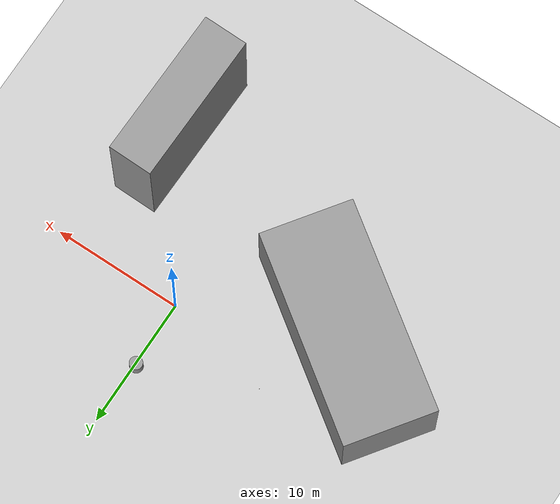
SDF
<sdf version="1.6">
 <world name="default">
  <light name="sun" type="directional">
   <pose>0 0 10 0 -0 0</pose>
   <diffuse>0.8 0.8 0.8 1</diffuse>
   <specular>0.2 0.2 0.2 1</specular>
   <attenuation>
    <range>1000</range>
    <constant>0.9</constant>
    <linear>0.01</linear>
    <quadratic>0.001</quadratic>
   </attenuation>
   <direction>-0.5 0.1 -0.9</direction>
  </light>
  <model name="ground_plane">
   <static>1</static>
   <link name="link">
    <collision name="collision">
     <geometry><plane><normal>0 0 1</normal><size>100 100</size></plane></geometry>
     <surface>
      <contact><collide_bitmask>65535</collide_bitmask></contact>
      <friction><ode><mu>100</mu><mu2>50</mu2></ode></friction>
     </surface>
    </collision>
    <visual name="visual">
     <cast_shadows>0</cast_shadows>
     <geometry><plane><normal>0 0 1</normal><size>100 100</size></plane></geometry>
     <material>
      <script><uri>file://media/materials/scripts/gazebo.material</uri><name>Gazebo/Grey</name></script>
     </material>
    </visual>
   </link>
  </model>
  <gravity>0 0 -9.8</gravity>
  <magnetic_field>6e-06 2.3e-05 -4.2e-05</magnetic_field>
  <atmosphere type="adiabatic"/>
  <physics name="default_physics" default="0" type="ode">
   <max_step_size>0.001</max_step_size>
   <real_time_factor>1</real_time_factor>
   <real_time_update_rate>1000</real_time_update_rate>
  </physics>
  <scene><ambient>0.4 0.4 0.4 1</ambient><background>0.7 0.7 0.7 1</background><shadows>1</shadows></scene>
  <spherical_coordinates>
   <surface_model>EARTH_WGS84</surface_model>
   <latitude_deg>0</latitude_deg>
   <longitude_deg>0</longitude_deg>
   <elevation>0</elevation>
   <heading_deg>0</heading_deg>
  </spherical_coordinates>
  <model name="unit_cylinder">
   <pose>-0.158866 5.2049 0.499997 3e-06 1e-06 -0</pose>
   <link name="link">
    <inertial>
     <mass>1</mass>
     <inertia><ixx>0.145833</ixx><ixy>0</ixy><ixz>0</ixz><iyy>0.145833</iyy><iyz>0</iyz><izz>0.125</izz></inertia>
    </inertial>
    <collision name="collision">
     <geometry><cylinder><radius>0.5</radius><length>1</length></cylinder></geometry>
    </collision>
    <visual name="visual">
     <geometry><cylinder><radius>0.5</radius><length>1</length></cylinder></geometry>
     <material>
      <script><name>Gazebo/Grey</name><uri>file://media/materials/scripts/gazebo.material</uri></script>
     </material>
    </visual>
   </link>
  </model>
  <model name="unit_box">
   <pose>-11.607 -4.50222 2.9101 1e-05 -5e-06 0.94985</pose>
   <link name="link">
    <inertial>
     <mass>1</mass>
     <inertia>
      <ixx>0.166667</ixx>
      <ixy>0</ixy>
      <ixz>0</ixz>
      <iyy>0.166667</iyy>
      <iyz>0</iyz>
      <izz>0.166667</izz>
     </inertia>
    </inertial>
    <collision name="collision"><geometry><box><size>7.0713 16.3327 5.82028</size></box></geometry></collision>
    <visual name="visual">
     <geometry><box><size>7.0713 16.3327 5.82028</size></box></geometry>
     <material>
      <script><name>Gazebo/Grey</name><uri>file://media/materials/scripts/gazebo.material</uri></script>
     </material>
    </visual>
   </link>
  </model>
  <model name="wooden_peg">
   <link name="link">
    <pose>0 0 0.04 0 -0 0</pose>
    <inertial>
     <mass>0.0175</mass>
     <inertia>
      <ixx>9.74923e-06</ixx>
      <ixy>0</ixy>
      <ixz>0</ixz>
      <iyy>9.74923e-06</iyy>
      <iyz>0</iyz>
      <izz>8.31797e-07</izz>
     </inertia>
    </inertial>
    <collision name="collision">
     <geometry><cylinder><radius>0.00975</radius><length>0.08</length></cylinder></geometry>
     <surface>
      <contact>
       <poissons_ratio>0.347</poissons_ratio>
       <elastic_modulus>8.8e+09</elastic_modulus>
       <ode><kp>100000</kp><kd>100</kd><max_vel>100</max_vel><min_depth>0.001</min_depth></ode>
      </contact>
      <friction>
       <torsional>
        <coefficient>1</coefficient>
        <use_patch_radius>0</use_patch_radius>
        <surface_radius>0.01</surface_radius>
       </torsional>
      </friction>
     </surface>
    </collision>
    <visual name="visual">
     <geometry><cylinder><radius>0.00975</radius><length>0.08</length></cylinder></geometry>
     <material>
      <script><uri>file://media/materials/scripts/gazebo.material</uri><name>Gazebo/Wood</name></script>
     </material>
    </visual>
   </link>
   <pose>-8.32639 1.78459 0.008749 1.5708 -0.687529 -0.164183</pose>
  </model>
  <model name="unit_box_0">
   <static>1</static>
   <pose>6.7922 -10.8288 4.61494 0.000718 2.7e-05 -0.021339</pose>
   <link name="link">
    <inertial>
     <mass>1</mass>
     <inertia>
      <ixx>0.166667</ixx>
      <ixy>0</ixy>
      <ixz>0</ixz>
      <iyy>0.166667</iyy>
      <iyz>0</iyz>
      <izz>0.166667</izz>
     </inertia>
    </inertial>
    <collision name="collision"><geometry><box><size>3.45551 11.6545 9.23827</size></box></geometry></collision>
    <visual name="visual">
     <geometry><box><size>3.45551 11.6545 9.23827</size></box></geometry>
     <material>
      <script><name>Gazebo/Grey</name><uri>file://media/materials/scripts/gazebo.material</uri></script>
     </material>
    </visual>
   </link>
  </model>
 </world>
</sdf>
